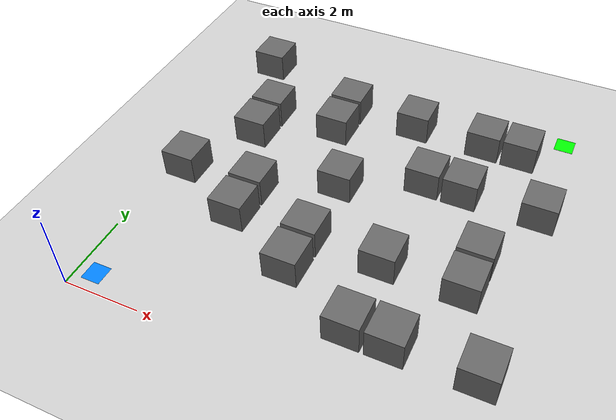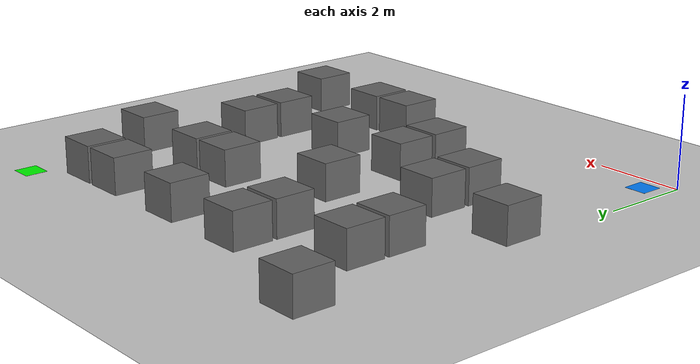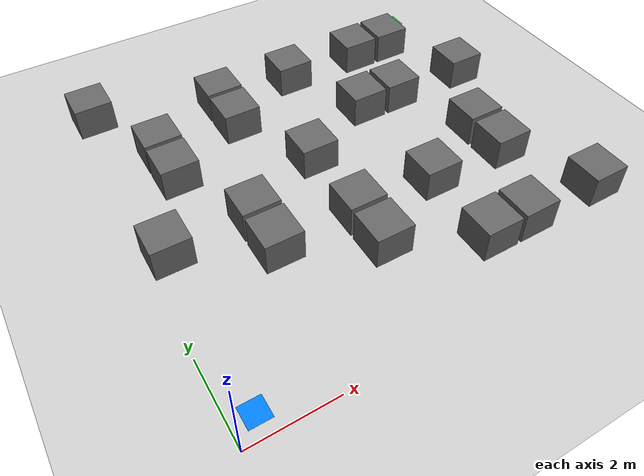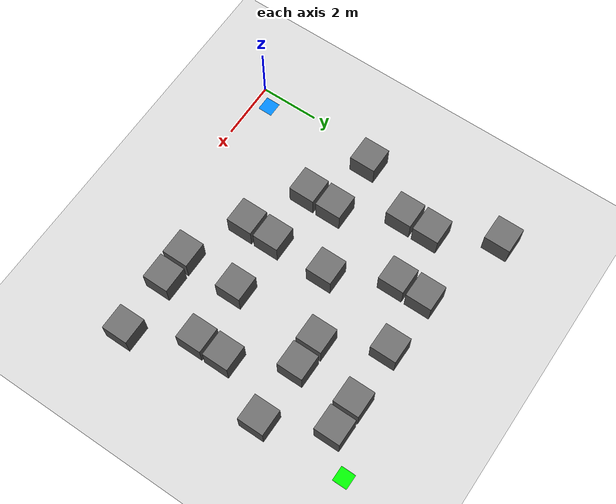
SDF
<?xml version="1.0" ?>
<sdf version="1.6">
  <world name="jackal_dqn_world">

    <include>
      <uri>model://sun</uri>
    </include>

    <!-- 地面 -->
    <include>
      <uri>model://ground_plane</uri>
    </include>

    <!-- 起点/终点标识用平面标记（可选，仅可视化） -->
    <model name="goal_marker">
      <static>true</static>
      <pose>9.5 9.5 0.02 0 0 0</pose>
      <link name="link">
        <collision name="collision">
          <geometry><box><size>0.5 0.5 0.001</size></box></geometry>
          <max_contacts>10</max_contacts>
        </collision>
        <visual name="visual">
          <geometry><box><size>0.5 0.5 0.001</size></box></geometry>
          <material><ambient>0.0 1.0 0.0 1</ambient>
                     <diffuse>0.0 1.0 0.0 1</diffuse></material>
        </visual>
      </link>
    </model>

    <model name="start_marker">
      <static>true</static>
      <pose>0.5 0.5 0.02 0 0 0</pose>
      <link name="link">
        <visual name="visual">
          <geometry><box><size>0.5 0.5 0.001</size></box></geometry>
          <material><ambient>0.0 0.5 1.0 1</ambient>
                     <diffuse>0.0 0.5 1.0 1</diffuse></material>
        </visual>
      </link>
    </model>

    <!-- ==================== 以下为障碍物 ====================
         MAP 语义: 数组元素 MAP[row][col]=1 表示障碍
         row -> Gazebo y 坐标, col -> Gazebo x 坐标
         障碍中心 = (col+0.5, row+0.5) -->

    <model name="obs_1_6">
      <static>true</static>
      <link name="link">
        <pose>6.5 1.5 0.4 0 0 0</pose>
        <collision name="collision">
          <geometry><box><size>0.9 0.9 0.8</size></box></geometry>
        </collision>
        <visual name="visual">
          <geometry><box><size>0.9 0.9 0.8</size></box></geometry>
          <material><ambient>0.4 0.4 0.4 1</ambient></material>
        </visual>
      </link>
    </model>

    <model name="obs_1_7">
      <static>true</static>
      <link name="link">
        <pose>7.5 1.5 0.4 0 0 0</pose>
        <collision name="collision">
          <geometry><box><size>0.9 0.9 0.8</size></box></geometry>
        </collision>
        <visual name="visual">
          <geometry><box><size>0.9 0.9 0.8</size></box></geometry>
          <material><ambient>0.4 0.4 0.4 1</ambient></material>
        </visual>
      </link>
    </model>

    <model name="obs_1_9">
      <static>true</static>
      <link name="link">
        <pose>9.5 1.5 0.4 0 0 0</pose>
        <collision name="collision">
          <geometry><box><size>0.9 0.9 0.8</size></box></geometry>
        </collision>
        <visual name="visual">
          <geometry><box><size>0.9 0.9 0.8</size></box></geometry>
          <material><ambient>0.4 0.4 0.4 1</ambient></material>
        </visual>
      </link>
    </model>

    <model name="obs_2_4">
      <static>true</static>
      <link name="link">
        <pose>4.5 2.5 0.4 0 0 0</pose>
        <collision name="collision">
          <geometry><box><size>0.9 0.9 0.8</size></box></geometry>
        </collision>
        <visual name="visual">
          <geometry><box><size>0.9 0.9 0.8</size></box></geometry>
          <material><ambient>0.4 0.4 0.4 1</ambient></material>
        </visual>
      </link>
    </model>

    <model name="obs_3_2">
      <static>true</static>
      <link name="link">
        <pose>2.5 3.5 0.4 0 0 0</pose>
        <collision name="collision">
          <geometry><box><size>0.9 0.9 0.8</size></box></geometry>
        </collision>
        <visual name="visual">
          <geometry><box><size>0.9 0.9 0.8</size></box></geometry>
          <material><ambient>0.4 0.4 0.4 1</ambient></material>
        </visual>
      </link>
    </model>

    <model name="obs_3_4">
      <static>true</static>
      <link name="link">
        <pose>4.5 3.5 0.4 0 0 0</pose>
        <collision name="collision">
          <geometry><box><size>0.9 0.9 0.8</size></box></geometry>
        </collision>
        <visual name="visual">
          <geometry><box><size>0.9 0.9 0.8</size></box></geometry>
          <material><ambient>0.4 0.4 0.4 1</ambient></material>
        </visual>
      </link>
    </model>

    <model name="obs_3_6">
      <static>true</static>
      <link name="link">
        <pose>6.5 3.5 0.4 0 0 0</pose>
        <collision name="collision">
          <geometry><box><size>0.9 0.9 0.8</size></box></geometry>
        </collision>
        <visual name="visual">
          <geometry><box><size>0.9 0.9 0.8</size></box></geometry>
          <material><ambient>0.4 0.4 0.4 1</ambient></material>
        </visual>
      </link>
    </model>

    <model name="obs_3_8">
      <static>true</static>
      <link name="link">
        <pose>8.5 3.5 0.4 0 0 0</pose>
        <collision name="collision">
          <geometry><box><size>0.9 0.9 0.8</size></box></geometry>
        </collision>
        <visual name="visual">
          <geometry><box><size>0.9 0.9 0.8</size></box></geometry>
          <material><ambient>0.4 0.4 0.4 1</ambient></material>
        </visual>
      </link>
    </model>

    <model name="obs_4_0">
      <static>true</static>
      <link name="link">
        <pose>0.5 4.5 0.4 0 0 0</pose>
        <collision name="collision">
          <geometry><box><size>0.9 0.9 0.8</size></box></geometry>
        </collision>
        <visual name="visual">
          <geometry><box><size>0.9 0.9 0.8</size></box></geometry>
          <material><ambient>0.4 0.4 0.4 1</ambient></material>
        </visual>
      </link>
    </model>

    <model name="obs_4_2">
      <static>true</static>
      <link name="link">
        <pose>2.5 4.5 0.4 0 0 0</pose>
        <collision name="collision">
          <geometry><box><size>0.9 0.9 0.8</size></box></geometry>
        </collision>
        <visual name="visual">
          <geometry><box><size>0.9 0.9 0.8</size></box></geometry>
          <material><ambient>0.4 0.4 0.4 1</ambient></material>
        </visual>
      </link>
    </model>

    <model name="obs_4_8">
      <static>true</static>
      <link name="link">
        <pose>8.5 4.5 0.4 0 0 0</pose>
        <collision name="collision">
          <geometry><box><size>0.9 0.9 0.8</size></box></geometry>
        </collision>
        <visual name="visual">
          <geometry><box><size>0.9 0.9 0.8</size></box></geometry>
          <material><ambient>0.4 0.4 0.4 1</ambient></material>
        </visual>
      </link>
    </model>

    <model name="obs_5_4">
      <static>true</static>
      <link name="link">
        <pose>4.5 5.5 0.4 0 0 0</pose>
        <collision name="collision">
          <geometry><box><size>0.9 0.9 0.8</size></box></geometry>
        </collision>
        <visual name="visual">
          <geometry><box><size>0.9 0.9 0.8</size></box></geometry>
          <material><ambient>0.4 0.4 0.4 1</ambient></material>
        </visual>
      </link>
    </model>

    <model name="obs_6_1">
      <static>true</static>
      <link name="link">
        <pose>1.5 6.5 0.4 0 0 0</pose>
        <collision name="collision">
          <geometry><box><size>0.9 0.9 0.8</size></box></geometry>
        </collision>
        <visual name="visual">
          <geometry><box><size>0.9 0.9 0.8</size></box></geometry>
          <material><ambient>0.4 0.4 0.4 1</ambient></material>
        </visual>
      </link>
    </model>

    <model name="obs_6_6">
      <static>true</static>
      <link name="link">
        <pose>6.5 6.5 0.4 0 0 0</pose>
        <collision name="collision">
          <geometry><box><size>0.9 0.9 0.8</size></box></geometry>
        </collision>
        <visual name="visual">
          <geometry><box><size>0.9 0.9 0.8</size></box></geometry>
          <material><ambient>0.4 0.4 0.4 1</ambient></material>
        </visual>
      </link>
    </model>

    <model name="obs_6_7">
      <static>true</static>
      <link name="link">
        <pose>7.5 6.5 0.4 0 0 0</pose>
        <collision name="collision">
          <geometry><box><size>0.9 0.9 0.8</size></box></geometry>
        </collision>
        <visual name="visual">
          <geometry><box><size>0.9 0.9 0.8</size></box></geometry>
          <material><ambient>0.4 0.4 0.4 1</ambient></material>
        </visual>
      </link>
    </model>

    <model name="obs_6_9">
      <static>true</static>
      <link name="link">
        <pose>9.5 6.5 0.4 0 0 0</pose>
        <collision name="collision">
          <geometry><box><size>0.9 0.9 0.8</size></box></geometry>
        </collision>
        <visual name="visual">
          <geometry><box><size>0.9 0.9 0.8</size></box></geometry>
          <material><ambient>0.4 0.4 0.4 1</ambient></material>
        </visual>
      </link>
    </model>

    <model name="obs_7_1">
      <static>true</static>
      <link name="link">
        <pose>1.5 7.5 0.4 0 0 0</pose>
        <collision name="collision">
          <geometry><box><size>0.9 0.9 0.8</size></box></geometry>
        </collision>
        <visual name="visual">
          <geometry><box><size>0.9 0.9 0.8</size></box></geometry>
          <material><ambient>0.4 0.4 0.4 1</ambient></material>
        </visual>
      </link>
    </model>

    <model name="obs_7_3">
      <static>true</static>
      <link name="link">
        <pose>3.5 7.5 0.4 0 0 0</pose>
        <collision name="collision">
          <geometry><box><size>0.9 0.9 0.8</size></box></geometry>
        </collision>
        <visual name="visual">
          <geometry><box><size>0.9 0.9 0.8</size></box></geometry>
          <material><ambient>0.4 0.4 0.4 1</ambient></material>
        </visual>
      </link>
    </model>

    <model name="obs_8_3">
      <static>true</static>
      <link name="link">
        <pose>3.5 8.5 0.4 0 0 0</pose>
        <collision name="collision">
          <geometry><box><size>0.9 0.9 0.8</size></box></geometry>
        </collision>
        <visual name="visual">
          <geometry><box><size>0.9 0.9 0.8</size></box></geometry>
          <material><ambient>0.4 0.4 0.4 1</ambient></material>
        </visual>
      </link>
    </model>

    <model name="obs_8_5">
      <static>true</static>
      <link name="link">
        <pose>5.5 8.5 0.4 0 0 0</pose>
        <collision name="collision">
          <geometry><box><size>0.9 0.9 0.8</size></box></geometry>
        </collision>
        <visual name="visual">
          <geometry><box><size>0.9 0.9 0.8</size></box></geometry>
          <material><ambient>0.4 0.4 0.4 1</ambient></material>
        </visual>
      </link>
    </model>

    <model name="obs_8_7">
      <static>true</static>
      <link name="link">
        <pose>7.5 8.5 0.4 0 0 0</pose>
        <collision name="collision">
          <geometry><box><size>0.9 0.9 0.8</size></box></geometry>
        </collision>
        <visual name="visual">
          <geometry><box><size>0.9 0.9 0.8</size></box></geometry>
          <material><ambient>0.4 0.4 0.4 1</ambient></material>
        </visual>
      </link>
    </model>

    <model name="obs_8_8">
      <static>true</static>
      <link name="link">
        <pose>8.5 8.5 0.4 0 0 0</pose>
        <collision name="collision">
          <geometry><box><size>0.9 0.9 0.8</size></box></geometry>
        </collision>
        <visual name="visual">
          <geometry><box><size>0.9 0.9 0.8</size></box></geometry>
          <material><ambient>0.4 0.4 0.4 1</ambient></material>
        </visual>
      </link>
    </model>

    <model name="obs_9_0">
      <static>true</static>
      <link name="link">
        <pose>0.5 9.5 0.4 0 0 0</pose>
        <collision name="collision">
          <geometry><box><size>0.9 0.9 0.8</size></box></geometry>
        </collision>
        <visual name="visual">
          <geometry><box><size>0.9 0.9 0.8</size></box></geometry>
          <material><ambient>0.4 0.4 0.4 1</ambient></material>
        </visual>
      </link>
    </model>

  </world>
</sdf>
